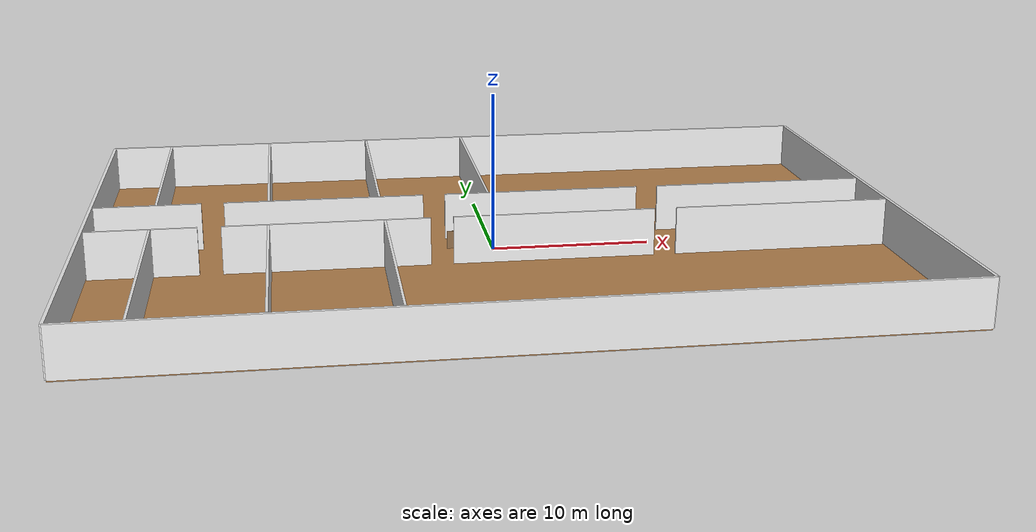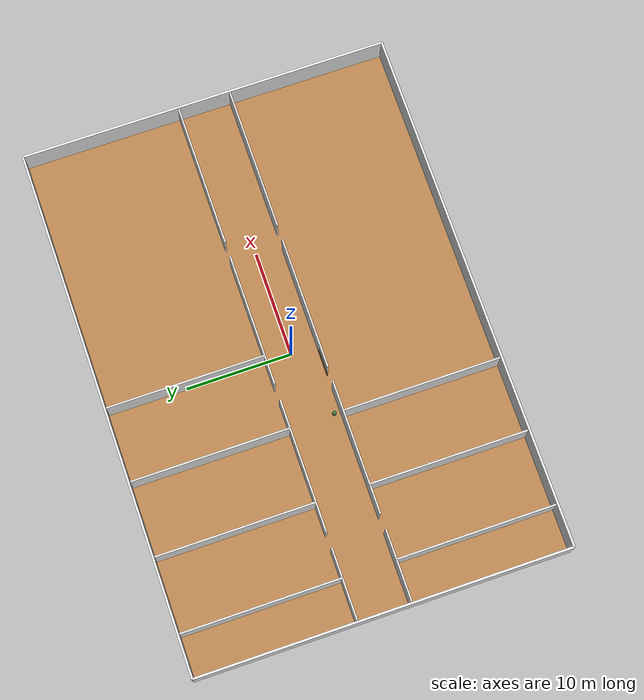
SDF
<sdf version="1.6">
 <world name="school">
  <include><uri>model://sun</uri></include>
  <model name="floor">
   <static>true</static>
   <link name="link">
    <pose>0 0 -0.05 0 0 0</pose>
    <collision name="c"><geometry><box><size>50 35 0.1</size></box></geometry></collision>
    <visual name="v">
     <geometry><box><size>50 35 0.1</size></box></geometry>
     <material>
      <script><uri>file://media/materials/scripts/gazebo.material</uri><name>Gazebo/WoodFloor</name></script>
     </material>
    </visual>
   </link>
  </model>
  <model name="wall_n">
   <static>true</static>
   <link name="link">
    <pose>0 17.5 1.5 0 0 0</pose>
    <collision name="c"><geometry><box><size>50 0.2 3</size></box></geometry></collision>
    <visual name="v">
     <geometry><box><size>50 0.2 3</size></box></geometry>
     <material>
      <script><uri>file://media/materials/scripts/gazebo.material</uri><name>Gazebo/White</name></script>
     </material>
    </visual>
   </link>
  </model>
  <model name="wall_s">
   <static>true</static>
   <link name="link">
    <pose>0 -17.5 1.5 0 0 0</pose>
    <collision name="c"><geometry><box><size>50 0.2 3</size></box></geometry></collision>
    <visual name="v">
     <geometry><box><size>50 0.2 3</size></box></geometry>
     <material>
      <script><uri>file://media/materials/scripts/gazebo.material</uri><name>Gazebo/White</name></script>
     </material>
    </visual>
   </link>
  </model>
  <model name="wall_e">
   <static>true</static>
   <link name="link">
    <pose>25 0 1.5 0 0 0</pose>
    <collision name="c"><geometry><box><size>0.2 35 3</size></box></geometry></collision>
    <visual name="v">
     <geometry><box><size>0.2 35 3</size></box></geometry>
     <material>
      <script><uri>file://media/materials/scripts/gazebo.material</uri><name>Gazebo/White</name></script>
     </material>
    </visual>
   </link>
  </model>
  <model name="wall_w">
   <static>true</static>
   <link name="link">
    <pose>-25 0 1.5 0 0 0</pose>
    <collision name="c"><geometry><box><size>0.2 35 3</size></box></geometry></collision>
    <visual name="v">
     <geometry><box><size>0.2 35 3</size></box></geometry>
     <material>
      <script><uri>file://media/materials/scripts/gazebo.material</uri><name>Gazebo/White</name></script>
     </material>
    </visual>
   </link>
  </model>
  <model name="cw_25_1">
   <static>true</static>
   <link name="link">
    <pose>-21.525 2.5 1.5 0 0 0</pose>
    <collision name="c"><geometry><box><size>6.65 0.15 3</size></box></geometry></collision>
    <visual name="v">
     <geometry><box><size>6.65 0.15 3</size></box></geometry>
     <material>
      <script><uri>file://media/materials/scripts/gazebo.material</uri><name>Gazebo/White</name></script>
     </material>
    </visual>
   </link>
  </model>
  <model name="cw_25_2">
   <static>true</static>
   <link name="link">
    <pose>-10.5 2.5 1.5 0 0 0</pose>
    <collision name="c"><geometry><box><size>12.6 0.15 3</size></box></geometry></collision>
    <visual name="v">
     <geometry><box><size>12.6 0.15 3</size></box></geometry>
     <material>
      <script><uri>file://media/materials/scripts/gazebo.material</uri><name>Gazebo/White</name></script>
     </material>
    </visual>
   </link>
  </model>
  <model name="cw_25_3">
   <static>true</static>
   <link name="link">
    <pose>3.5 2.5 1.5 0 0 0</pose>
    <collision name="c"><geometry><box><size>12.6 0.15 3</size></box></geometry></collision>
    <visual name="v">
     <geometry><box><size>12.6 0.15 3</size></box></geometry>
     <material>
      <script><uri>file://media/materials/scripts/gazebo.material</uri><name>Gazebo/White</name></script>
     </material>
    </visual>
   </link>
  </model>
  <model name="cw_25_end">
   <static>true</static>
   <link name="link">
    <pose>18.025 2.5 1.5 0 0 0</pose>
    <collision name="c"><geometry><box><size>13.65 0.15 3</size></box></geometry></collision>
    <visual name="v">
     <geometry><box><size>13.65 0.15 3</size></box></geometry>
     <material>
      <script><uri>file://media/materials/scripts/gazebo.material</uri><name>Gazebo/White</name></script>
     </material>
    </visual>
   </link>
  </model>
  <model name="cw_-25_1">
   <static>true</static>
   <link name="link">
    <pose>-21.525 -2.5 1.5 0 0 0</pose>
    <collision name="c"><geometry><box><size>6.65 0.15 3</size></box></geometry></collision>
    <visual name="v">
     <geometry><box><size>6.65 0.15 3</size></box></geometry>
     <material>
      <script><uri>file://media/materials/scripts/gazebo.material</uri><name>Gazebo/White</name></script>
     </material>
    </visual>
   </link>
  </model>
  <model name="cw_-25_2">
   <static>true</static>
   <link name="link">
    <pose>-10.5 -2.5 1.5 0 0 0</pose>
    <collision name="c"><geometry><box><size>12.6 0.15 3</size></box></geometry></collision>
    <visual name="v">
     <geometry><box><size>12.6 0.15 3</size></box></geometry>
     <material>
      <script><uri>file://media/materials/scripts/gazebo.material</uri><name>Gazebo/White</name></script>
     </material>
    </visual>
   </link>
  </model>
  <model name="cw_-25_3">
   <static>true</static>
   <link name="link">
    <pose>3.5 -2.5 1.5 0 0 0</pose>
    <collision name="c"><geometry><box><size>12.6 0.15 3</size></box></geometry></collision>
    <visual name="v">
     <geometry><box><size>12.6 0.15 3</size></box></geometry>
     <material>
      <script><uri>file://media/materials/scripts/gazebo.material</uri><name>Gazebo/White</name></script>
     </material>
    </visual>
   </link>
  </model>
  <model name="cw_-25_end">
   <static>true</static>
   <link name="link">
    <pose>18.025 -2.5 1.5 0 0 0</pose>
    <collision name="c"><geometry><box><size>13.65 0.15 3</size></box></geometry></collision>
    <visual name="v">
     <geometry><box><size>13.65 0.15 3</size></box></geometry>
     <material>
      <script><uri>file://media/materials/scripts/gazebo.material</uri><name>Gazebo/White</name></script>
     </material>
    </visual>
   </link>
  </model>
  <model name="div_1">
   <static>true</static>
   <link name="link">
    <pose>-21 9.925 1.5 0 0 0</pose>
    <collision name="c"><geometry><box><size>0.15 14.85 3</size></box></geometry></collision>
    <visual name="v">
     <geometry><box><size>0.15 14.85 3</size></box></geometry>
     <material>
      <script><uri>file://media/materials/scripts/gazebo.material</uri><name>Gazebo/White</name></script>
     </material>
    </visual>
   </link>
  </model>
  <model name="div_2">
   <static>true</static>
   <link name="link">
    <pose>-21 -9.925 1.5 0 0 0</pose>
    <collision name="c"><geometry><box><size>0.15 14.85 3</size></box></geometry></collision>
    <visual name="v">
     <geometry><box><size>0.15 14.85 3</size></box></geometry>
     <material>
      <script><uri>file://media/materials/scripts/gazebo.material</uri><name>Gazebo/White</name></script>
     </material>
    </visual>
   </link>
  </model>
  <model name="div_3">
   <static>true</static>
   <link name="link">
    <pose>-14 9.925 1.5 0 0 0</pose>
    <collision name="c"><geometry><box><size>0.15 14.85 3</size></box></geometry></collision>
    <visual name="v">
     <geometry><box><size>0.15 14.85 3</size></box></geometry>
     <material>
      <script><uri>file://media/materials/scripts/gazebo.material</uri><name>Gazebo/White</name></script>
     </material>
    </visual>
   </link>
  </model>
  <model name="div_4">
   <static>true</static>
   <link name="link">
    <pose>-14 -9.925 1.5 0 0 0</pose>
    <collision name="c"><geometry><box><size>0.15 14.85 3</size></box></geometry></collision>
    <visual name="v">
     <geometry><box><size>0.15 14.85 3</size></box></geometry>
     <material>
      <script><uri>file://media/materials/scripts/gazebo.material</uri><name>Gazebo/White</name></script>
     </material>
    </visual>
   </link>
  </model>
  <model name="div_5">
   <static>true</static>
   <link name="link">
    <pose>-7 9.925 1.5 0 0 0</pose>
    <collision name="c"><geometry><box><size>0.15 14.85 3</size></box></geometry></collision>
    <visual name="v">
     <geometry><box><size>0.15 14.85 3</size></box></geometry>
     <material>
      <script><uri>file://media/materials/scripts/gazebo.material</uri><name>Gazebo/White</name></script>
     </material>
    </visual>
   </link>
  </model>
  <model name="div_6">
   <static>true</static>
   <link name="link">
    <pose>-7 -9.925 1.5 0 0 0</pose>
    <collision name="c"><geometry><box><size>0.15 14.85 3</size></box></geometry></collision>
    <visual name="v">
     <geometry><box><size>0.15 14.85 3</size></box></geometry>
     <material>
      <script><uri>file://media/materials/scripts/gazebo.material</uri><name>Gazebo/White</name></script>
     </material>
    </visual>
   </link>
  </model>
  <model name="div_7">
   <static>true</static>
   <link name="link">
    <pose>0 9.925 1.5 0 0 0</pose>
    <collision name="c"><geometry><box><size>0.15 14.85 3</size></box></geometry></collision>
    <visual name="v">
     <geometry><box><size>0.15 14.85 3</size></box></geometry>
     <material>
      <script><uri>file://media/materials/scripts/gazebo.material</uri><name>Gazebo/White</name></script>
     </material>
    </visual>
   </link>
  </model>
  <model name="enh_notice_board">
   <static>true</static>
   <pose>-2.0 -2.36 1.5 0 0 0</pose>
   <link name="link">
    <collision name="c"><geometry><box><size>2.4 0.05 1.1</size></box></geometry></collision>
    <visual name="v">
     <geometry><box><size>2.4 0.05 1.1</size></box></geometry>
     <material>
      <ambient>0.550 0.420 0.280 1</ambient>
      <diffuse>0.550 0.420 0.280 1</diffuse>
      <specular>0.1 0.1 0.1 1</specular>
     </material>
    </visual>
   </link>
  </model>
  <model name="enh_bin_0">
   <static>true</static>
   <pose>-6.5 -1.9 0.3 0 0 0</pose>
   <link name="link">
    <collision name="c">
     <geometry><cylinder><radius>0.18</radius><length>0.6</length></cylinder></geometry>
    </collision>
    <visual name="v">
     <geometry><cylinder><radius>0.18</radius><length>0.6</length></cylinder></geometry>
     <material>
      <ambient>0.200 0.450 0.250 1</ambient>
      <diffuse>0.200 0.450 0.250 1</diffuse>
      <specular>0.1 0.1 0.1 1</specular>
     </material>
    </visual>
   </link>
  </model>
 </world>
</sdf>
